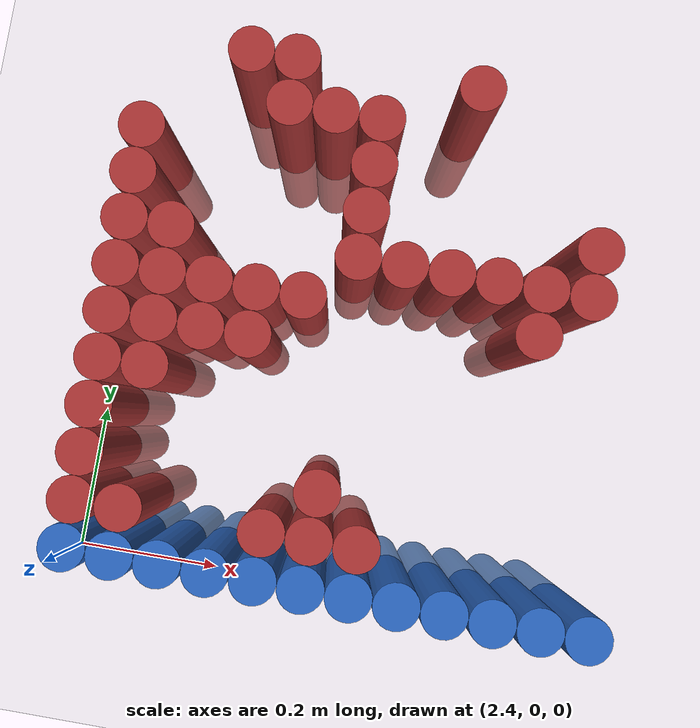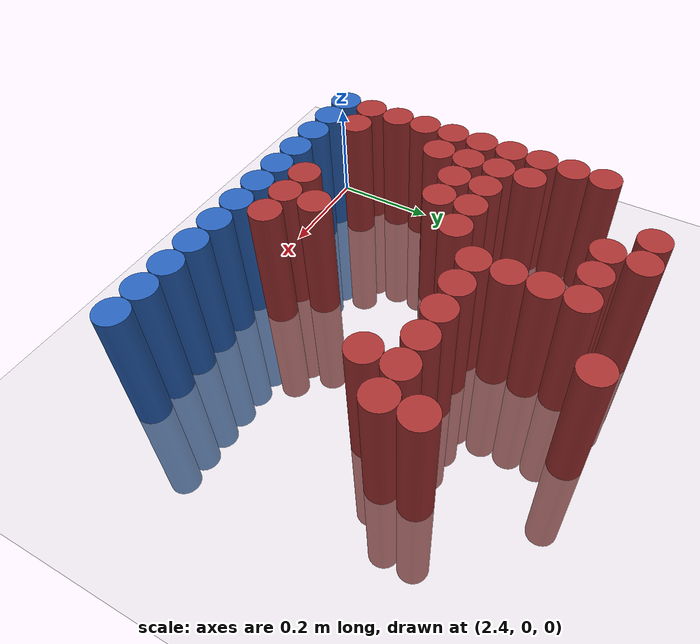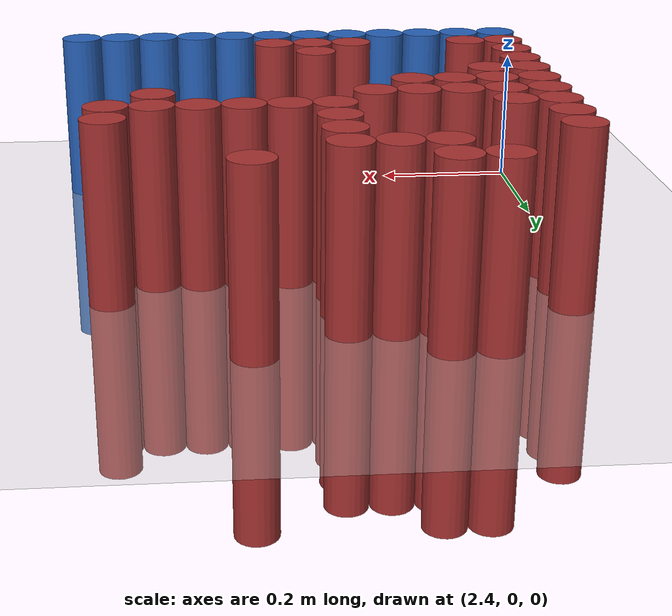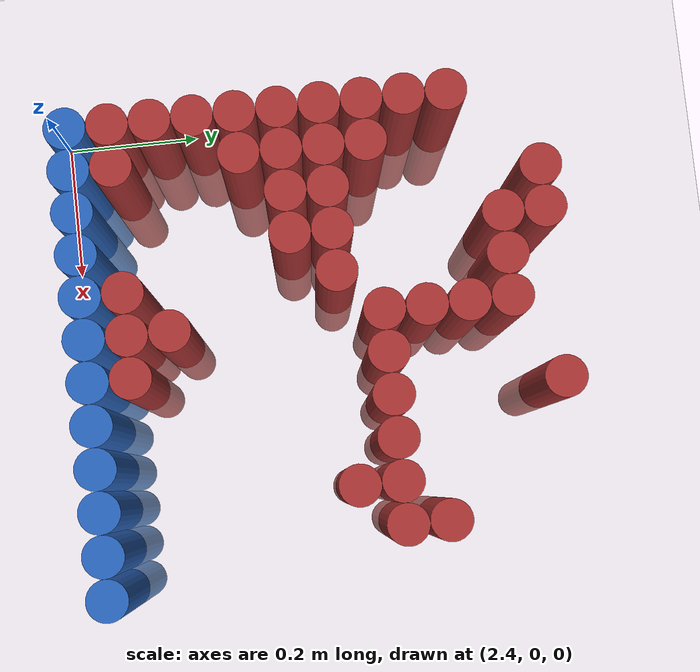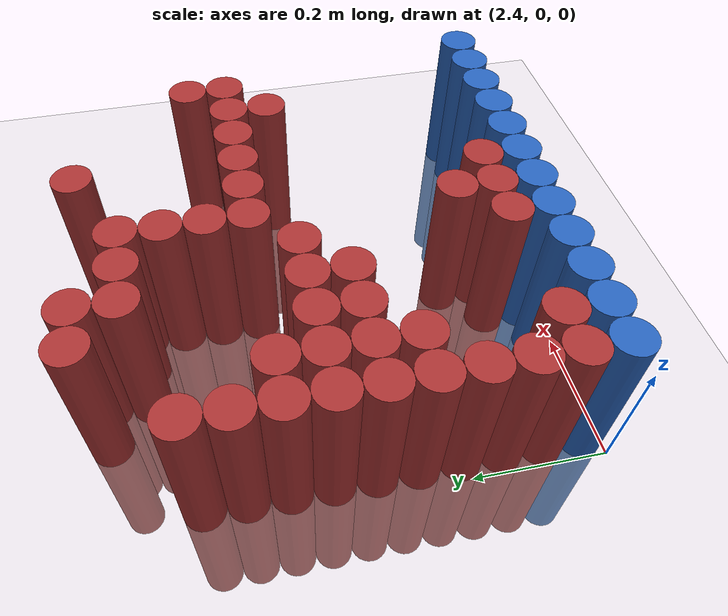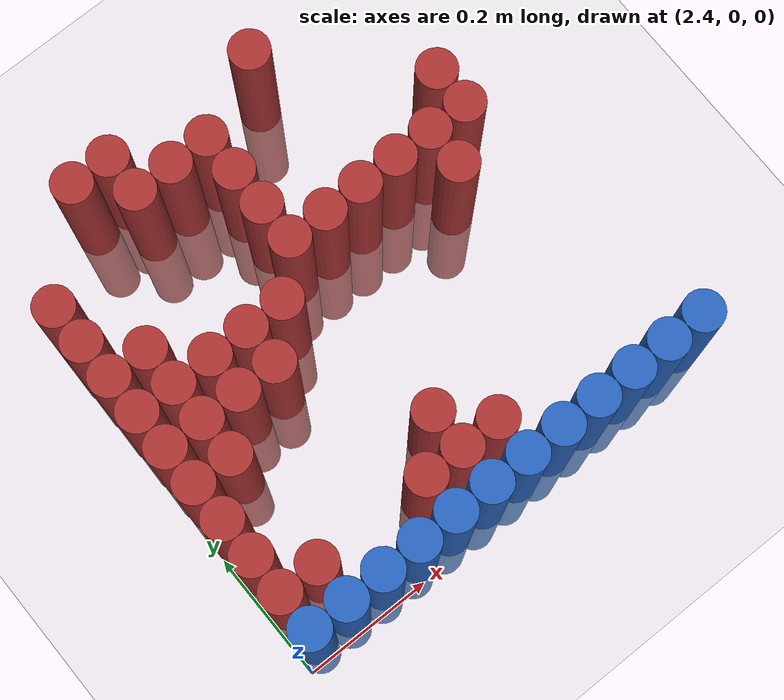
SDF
<sdf version="1.6">
 <world name="default">
  <model name="ground_plane">
   <static>1</static>
   <link name="link">
    <collision name="collision">
     <geometry><plane><normal>0 0 1</normal><size>100 100</size></plane></geometry>
     <surface><friction><ode><mu>100</mu><mu2>50</mu2></ode></friction></surface>
    </collision>
    <visual name="visual">
     <cast_shadows>0</cast_shadows>
     <geometry><plane><normal>0 0 1</normal><size>100 100</size></plane></geometry>
     <material>
      <script><uri>file://media/materials/scripts/gazebo.material</uri><name>Gazebo/Grey</name></script>
     </material>
    </visual>
   </link>
  </model>
  <model name="unit_cylinder_228">
   <static>1</static>
   <pose>2.550000 0.690000 0.000000 0.000000 0.000000 0.000000</pose>
   <link name="link">
    <inertial>
     <mass>1</mass>
     <inertia><ixx>0.145833</ixx><ixy>0</ixy><ixz>0</ixz><iyy>0.145833</iyy><iyz>0</iyz><izz>0.125</izz></inertia>
    </inertial>
    <collision name="collision">
     <geometry><cylinder><radius>0.030000</radius><length>0.5</length></cylinder></geometry>
    </collision>
    <visual name="visual">
     <geometry><cylinder><radius>0.030000</radius><length>0.5</length></cylinder></geometry>
     <material>
      <ambient>0.648000 0.192000 0.192000 1</ambient>
      <diffuse>0.648000 0.192000 0.192000 1</diffuse>
     </material>
     <material>
      <script><name>Gazebo/Grey</name><uri>file://media/materials/scripts/gazebo.material</uri></script>
     </material>
    </visual>
   </link>
  </model>
  <model name="unit_cylinder_229">
   <static>1</static>
   <pose>2.610000 0.690000 0.000000 0.000000 0.000000 0.000000</pose>
   <link name="link">
    <inertial>
     <mass>1</mass>
     <inertia><ixx>0.145833</ixx><ixy>0</ixy><ixz>0</ixz><iyy>0.145833</iyy><iyz>0</iyz><izz>0.125</izz></inertia>
    </inertial>
    <collision name="collision">
     <geometry><cylinder><radius>0.030000</radius><length>0.5</length></cylinder></geometry>
    </collision>
    <visual name="visual">
     <geometry><cylinder><radius>0.030000</radius><length>0.5</length></cylinder></geometry>
     <material>
      <ambient>0.648000 0.192000 0.192000 1</ambient>
      <diffuse>0.648000 0.192000 0.192000 1</diffuse>
     </material>
     <material>
      <script><name>Gazebo/Grey</name><uri>file://media/materials/scripts/gazebo.material</uri></script>
     </material>
    </visual>
   </link>
  </model>
  <model name="unit_cylinder_230">
   <static>1</static>
   <pose>2.850000 0.690000 0.000000 0.000000 0.000000 0.000000</pose>
   <link name="link">
    <inertial>
     <mass>1</mass>
     <inertia><ixx>0.145833</ixx><ixy>0</ixy><ixz>0</ixz><iyy>0.145833</iyy><iyz>0</iyz><izz>0.125</izz></inertia>
    </inertial>
    <collision name="collision">
     <geometry><cylinder><radius>0.030000</radius><length>0.5</length></cylinder></geometry>
    </collision>
    <visual name="visual">
     <geometry><cylinder><radius>0.030000</radius><length>0.5</length></cylinder></geometry>
     <material>
      <ambient>0.648000 0.192000 0.192000 1</ambient>
      <diffuse>0.648000 0.192000 0.192000 1</diffuse>
     </material>
     <material>
      <script><name>Gazebo/Grey</name><uri>file://media/materials/scripts/gazebo.material</uri></script>
     </material>
    </visual>
   </link>
  </model>
  <model name="unit_cylinder_239">
   <static>1</static>
   <pose>2.610000 0.630000 0.000000 0.000000 0.000000 0.000000</pose>
   <link name="link">
    <inertial>
     <mass>1</mass>
     <inertia><ixx>0.145833</ixx><ixy>0</ixy><ixz>0</ixz><iyy>0.145833</iyy><iyz>0</iyz><izz>0.125</izz></inertia>
    </inertial>
    <collision name="collision">
     <geometry><cylinder><radius>0.030000</radius><length>0.5</length></cylinder></geometry>
    </collision>
    <visual name="visual">
     <geometry><cylinder><radius>0.030000</radius><length>0.5</length></cylinder></geometry>
     <material>
      <ambient>0.648000 0.192000 0.192000 1</ambient>
      <diffuse>0.648000 0.192000 0.192000 1</diffuse>
     </material>
     <material>
      <script><name>Gazebo/Grey</name><uri>file://media/materials/scripts/gazebo.material</uri></script>
     </material>
    </visual>
   </link>
  </model>
  <model name="unit_cylinder_240">
   <static>1</static>
   <pose>2.670000 0.630000 0.000000 0.000000 0.000000 0.000000</pose>
   <link name="link">
    <inertial>
     <mass>1</mass>
     <inertia><ixx>0.145833</ixx><ixy>0</ixy><ixz>0</ixz><iyy>0.145833</iyy><iyz>0</iyz><izz>0.125</izz></inertia>
    </inertial>
    <collision name="collision">
     <geometry><cylinder><radius>0.030000</radius><length>0.5</length></cylinder></geometry>
    </collision>
    <visual name="visual">
     <geometry><cylinder><radius>0.030000</radius><length>0.5</length></cylinder></geometry>
     <material>
      <ambient>0.648000 0.192000 0.192000 1</ambient>
      <diffuse>0.648000 0.192000 0.192000 1</diffuse>
     </material>
     <material>
      <script><name>Gazebo/Grey</name><uri>file://media/materials/scripts/gazebo.material</uri></script>
     </material>
    </visual>
   </link>
  </model>
  <model name="unit_cylinder_241">
   <static>1</static>
   <pose>2.730000 0.630000 0.000000 0.000000 0.000000 0.000000</pose>
   <link name="link">
    <inertial>
     <mass>1</mass>
     <inertia><ixx>0.145833</ixx><ixy>0</ixy><ixz>0</ixz><iyy>0.145833</iyy><iyz>0</iyz><izz>0.125</izz></inertia>
    </inertial>
    <collision name="collision">
     <geometry><cylinder><radius>0.030000</radius><length>0.5</length></cylinder></geometry>
    </collision>
    <visual name="visual">
     <geometry><cylinder><radius>0.030000</radius><length>0.5</length></cylinder></geometry>
     <material>
      <ambient>0.648000 0.192000 0.192000 1</ambient>
      <diffuse>0.648000 0.192000 0.192000 1</diffuse>
     </material>
     <material>
      <script><name>Gazebo/Grey</name><uri>file://media/materials/scripts/gazebo.material</uri></script>
     </material>
    </visual>
   </link>
  </model>
  <model name="unit_cylinder_245">
   <static>1</static>
   <pose>2.430000 0.570000 0.000000 0.000000 0.000000 0.000000</pose>
   <link name="link">
    <inertial>
     <mass>1</mass>
     <inertia><ixx>0.145833</ixx><ixy>0</ixy><ixz>0</ixz><iyy>0.145833</iyy><iyz>0</iyz><izz>0.125</izz></inertia>
    </inertial>
    <collision name="collision">
     <geometry><cylinder><radius>0.030000</radius><length>0.5</length></cylinder></geometry>
    </collision>
    <visual name="visual">
     <geometry><cylinder><radius>0.030000</radius><length>0.5</length></cylinder></geometry>
     <material>
      <ambient>0.648000 0.192000 0.192000 1</ambient>
      <diffuse>0.648000 0.192000 0.192000 1</diffuse>
     </material>
     <material>
      <script><name>Gazebo/Grey</name><uri>file://media/materials/scripts/gazebo.material</uri></script>
     </material>
    </visual>
   </link>
  </model>
  <model name="unit_cylinder_246">
   <static>1</static>
   <pose>2.730000 0.570000 0.000000 0.000000 0.000000 0.000000</pose>
   <link name="link">
    <inertial>
     <mass>1</mass>
     <inertia><ixx>0.145833</ixx><ixy>0</ixy><ixz>0</ixz><iyy>0.145833</iyy><iyz>0</iyz><izz>0.125</izz></inertia>
    </inertial>
    <collision name="collision">
     <geometry><cylinder><radius>0.030000</radius><length>0.5</length></cylinder></geometry>
    </collision>
    <visual name="visual">
     <geometry><cylinder><radius>0.030000</radius><length>0.5</length></cylinder></geometry>
     <material>
      <ambient>0.648000 0.192000 0.192000 1</ambient>
      <diffuse>0.648000 0.192000 0.192000 1</diffuse>
     </material>
     <material>
      <script><name>Gazebo/Grey</name><uri>file://media/materials/scripts/gazebo.material</uri></script>
     </material>
    </visual>
   </link>
  </model>
  <model name="unit_cylinder_253">
   <static>1</static>
   <pose>2.430000 0.510000 0.000000 0.000000 0.000000 0.000000</pose>
   <link name="link">
    <inertial>
     <mass>1</mass>
     <inertia><ixx>0.145833</ixx><ixy>0</ixy><ixz>0</ixz><iyy>0.145833</iyy><iyz>0</iyz><izz>0.125</izz></inertia>
    </inertial>
    <collision name="collision">
     <geometry><cylinder><radius>0.030000</radius><length>0.5</length></cylinder></geometry>
    </collision>
    <visual name="visual">
     <geometry><cylinder><radius>0.030000</radius><length>0.5</length></cylinder></geometry>
     <material>
      <ambient>0.648000 0.192000 0.192000 1</ambient>
      <diffuse>0.648000 0.192000 0.192000 1</diffuse>
     </material>
     <material>
      <script><name>Gazebo/Grey</name><uri>file://media/materials/scripts/gazebo.material</uri></script>
     </material>
    </visual>
   </link>
  </model>
  <model name="unit_cylinder_254">
   <static>1</static>
   <pose>2.730000 0.510000 0.000000 0.000000 0.000000 0.000000</pose>
   <link name="link">
    <inertial>
     <mass>1</mass>
     <inertia><ixx>0.145833</ixx><ixy>0</ixy><ixz>0</ixz><iyy>0.145833</iyy><iyz>0</iyz><izz>0.125</izz></inertia>
    </inertial>
    <collision name="collision">
     <geometry><cylinder><radius>0.030000</radius><length>0.5</length></cylinder></geometry>
    </collision>
    <visual name="visual">
     <geometry><cylinder><radius>0.030000</radius><length>0.5</length></cylinder></geometry>
     <material>
      <ambient>0.648000 0.192000 0.192000 1</ambient>
      <diffuse>0.648000 0.192000 0.192000 1</diffuse>
     </material>
     <material>
      <script><name>Gazebo/Grey</name><uri>file://media/materials/scripts/gazebo.material</uri></script>
     </material>
    </visual>
   </link>
  </model>
  <model name="unit_cylinder_255">
   <static>1</static>
   <pose>3.030000 0.510000 0.000000 0.000000 0.000000 0.000000</pose>
   <link name="link">
    <inertial>
     <mass>1</mass>
     <inertia><ixx>0.145833</ixx><ixy>0</ixy><ixz>0</ixz><iyy>0.145833</iyy><iyz>0</iyz><izz>0.125</izz></inertia>
    </inertial>
    <collision name="collision">
     <geometry><cylinder><radius>0.030000</radius><length>0.5</length></cylinder></geometry>
    </collision>
    <visual name="visual">
     <geometry><cylinder><radius>0.030000</radius><length>0.5</length></cylinder></geometry>
     <material>
      <ambient>0.648000 0.192000 0.192000 1</ambient>
      <diffuse>0.648000 0.192000 0.192000 1</diffuse>
     </material>
     <material>
      <script><name>Gazebo/Grey</name><uri>file://media/materials/scripts/gazebo.material</uri></script>
     </material>
    </visual>
   </link>
  </model>
  <model name="unit_cylinder_260">
   <static>1</static>
   <pose>2.430000 0.450000 0.000000 0.000000 0.000000 0.000000</pose>
   <link name="link">
    <inertial>
     <mass>1</mass>
     <inertia><ixx>0.145833</ixx><ixy>0</ixy><ixz>0</ixz><iyy>0.145833</iyy><iyz>0</iyz><izz>0.125</izz></inertia>
    </inertial>
    <collision name="collision">
     <geometry><cylinder><radius>0.030000</radius><length>0.5</length></cylinder></geometry>
    </collision>
    <visual name="visual">
     <geometry><cylinder><radius>0.030000</radius><length>0.5</length></cylinder></geometry>
     <material>
      <ambient>0.648000 0.192000 0.192000 1</ambient>
      <diffuse>0.648000 0.192000 0.192000 1</diffuse>
     </material>
     <material>
      <script><name>Gazebo/Grey</name><uri>file://media/materials/scripts/gazebo.material</uri></script>
     </material>
    </visual>
   </link>
  </model>
  <model name="unit_cylinder_261">
   <static>1</static>
   <pose>2.490000 0.450000 0.000000 0.000000 0.000000 0.000000</pose>
   <link name="link">
    <inertial>
     <mass>1</mass>
     <inertia><ixx>0.145833</ixx><ixy>0</ixy><ixz>0</ixz><iyy>0.145833</iyy><iyz>0</iyz><izz>0.125</izz></inertia>
    </inertial>
    <collision name="collision">
     <geometry><cylinder><radius>0.030000</radius><length>0.5</length></cylinder></geometry>
    </collision>
    <visual name="visual">
     <geometry><cylinder><radius>0.030000</radius><length>0.5</length></cylinder></geometry>
     <material>
      <ambient>0.648000 0.192000 0.192000 1</ambient>
      <diffuse>0.648000 0.192000 0.192000 1</diffuse>
     </material>
     <material>
      <script><name>Gazebo/Grey</name><uri>file://media/materials/scripts/gazebo.material</uri></script>
     </material>
    </visual>
   </link>
  </model>
  <model name="unit_cylinder_262">
   <static>1</static>
   <pose>2.730000 0.450000 0.000000 0.000000 0.000000 0.000000</pose>
   <link name="link">
    <inertial>
     <mass>1</mass>
     <inertia><ixx>0.145833</ixx><ixy>0</ixy><ixz>0</ixz><iyy>0.145833</iyy><iyz>0</iyz><izz>0.125</izz></inertia>
    </inertial>
    <collision name="collision">
     <geometry><cylinder><radius>0.030000</radius><length>0.5</length></cylinder></geometry>
    </collision>
    <visual name="visual">
     <geometry><cylinder><radius>0.030000</radius><length>0.5</length></cylinder></geometry>
     <material>
      <ambient>0.648000 0.192000 0.192000 1</ambient>
      <diffuse>0.648000 0.192000 0.192000 1</diffuse>
     </material>
     <material>
      <script><name>Gazebo/Grey</name><uri>file://media/materials/scripts/gazebo.material</uri></script>
     </material>
    </visual>
   </link>
  </model>
  <model name="unit_cylinder_263">
   <static>1</static>
   <pose>2.790000 0.450000 0.000000 0.000000 0.000000 0.000000</pose>
   <link name="link">
    <inertial>
     <mass>1</mass>
     <inertia><ixx>0.145833</ixx><ixy>0</ixy><ixz>0</ixz><iyy>0.145833</iyy><iyz>0</iyz><izz>0.125</izz></inertia>
    </inertial>
    <collision name="collision">
     <geometry><cylinder><radius>0.030000</radius><length>0.5</length></cylinder></geometry>
    </collision>
    <visual name="visual">
     <geometry><cylinder><radius>0.030000</radius><length>0.5</length></cylinder></geometry>
     <material>
      <ambient>0.648000 0.192000 0.192000 1</ambient>
      <diffuse>0.648000 0.192000 0.192000 1</diffuse>
     </material>
     <material>
      <script><name>Gazebo/Grey</name><uri>file://media/materials/scripts/gazebo.material</uri></script>
     </material>
    </visual>
   </link>
  </model>
  <model name="unit_cylinder_264">
   <static>1</static>
   <pose>2.850000 0.450000 0.000000 0.000000 0.000000 0.000000</pose>
   <link name="link">
    <inertial>
     <mass>1</mass>
     <inertia><ixx>0.145833</ixx><ixy>0</ixy><ixz>0</ixz><iyy>0.145833</iyy><iyz>0</iyz><izz>0.125</izz></inertia>
    </inertial>
    <collision name="collision">
     <geometry><cylinder><radius>0.030000</radius><length>0.5</length></cylinder></geometry>
    </collision>
    <visual name="visual">
     <geometry><cylinder><radius>0.030000</radius><length>0.5</length></cylinder></geometry>
     <material>
      <ambient>0.648000 0.192000 0.192000 1</ambient>
      <diffuse>0.648000 0.192000 0.192000 1</diffuse>
     </material>
     <material>
      <script><name>Gazebo/Grey</name><uri>file://media/materials/scripts/gazebo.material</uri></script>
     </material>
    </visual>
   </link>
  </model>
  <model name="unit_cylinder_265">
   <static>1</static>
   <pose>2.910000 0.450000 0.000000 0.000000 0.000000 0.000000</pose>
   <link name="link">
    <inertial>
     <mass>1</mass>
     <inertia><ixx>0.145833</ixx><ixy>0</ixy><ixz>0</ixz><iyy>0.145833</iyy><iyz>0</iyz><izz>0.125</izz></inertia>
    </inertial>
    <collision name="collision">
     <geometry><cylinder><radius>0.030000</radius><length>0.5</length></cylinder></geometry>
    </collision>
    <visual name="visual">
     <geometry><cylinder><radius>0.030000</radius><length>0.5</length></cylinder></geometry>
     <material>
      <ambient>0.648000 0.192000 0.192000 1</ambient>
      <diffuse>0.648000 0.192000 0.192000 1</diffuse>
     </material>
     <material>
      <script><name>Gazebo/Grey</name><uri>file://media/materials/scripts/gazebo.material</uri></script>
     </material>
    </visual>
   </link>
  </model>
  <model name="unit_cylinder_266">
   <static>1</static>
   <pose>2.970000 0.450000 0.000000 0.000000 0.000000 0.000000</pose>
   <link name="link">
    <inertial>
     <mass>1</mass>
     <inertia><ixx>0.145833</ixx><ixy>0</ixy><ixz>0</ixz><iyy>0.145833</iyy><iyz>0</iyz><izz>0.125</izz></inertia>
    </inertial>
    <collision name="collision">
     <geometry><cylinder><radius>0.030000</radius><length>0.5</length></cylinder></geometry>
    </collision>
    <visual name="visual">
     <geometry><cylinder><radius>0.030000</radius><length>0.5</length></cylinder></geometry>
     <material>
      <ambient>0.648000 0.192000 0.192000 1</ambient>
      <diffuse>0.648000 0.192000 0.192000 1</diffuse>
     </material>
     <material>
      <script><name>Gazebo/Grey</name><uri>file://media/materials/scripts/gazebo.material</uri></script>
     </material>
    </visual>
   </link>
  </model>
  <model name="unit_cylinder_267">
   <static>1</static>
   <pose>3.030000 0.450000 0.000000 0.000000 0.000000 0.000000</pose>
   <link name="link">
    <inertial>
     <mass>1</mass>
     <inertia><ixx>0.145833</ixx><ixy>0</ixy><ixz>0</ixz><iyy>0.145833</iyy><iyz>0</iyz><izz>0.125</izz></inertia>
    </inertial>
    <collision name="collision">
     <geometry><cylinder><radius>0.030000</radius><length>0.5</length></cylinder></geometry>
    </collision>
    <visual name="visual">
     <geometry><cylinder><radius>0.030000</radius><length>0.5</length></cylinder></geometry>
     <material>
      <ambient>0.648000 0.192000 0.192000 1</ambient>
      <diffuse>0.648000 0.192000 0.192000 1</diffuse>
     </material>
     <material>
      <script><name>Gazebo/Grey</name><uri>file://media/materials/scripts/gazebo.material</uri></script>
     </material>
    </visual>
   </link>
  </model>
  <model name="unit_cylinder_275">
   <static>1</static>
   <pose>2.430000 0.390000 0.000000 0.000000 0.000000 0.000000</pose>
   <link name="link">
    <inertial>
     <mass>1</mass>
     <inertia><ixx>0.145833</ixx><ixy>0</ixy><ixz>0</ixz><iyy>0.145833</iyy><iyz>0</iyz><izz>0.125</izz></inertia>
    </inertial>
    <collision name="collision">
     <geometry><cylinder><radius>0.030000</radius><length>0.5</length></cylinder></geometry>
    </collision>
    <visual name="visual">
     <geometry><cylinder><radius>0.030000</radius><length>0.5</length></cylinder></geometry>
     <material>
      <ambient>0.648000 0.192000 0.192000 1</ambient>
      <diffuse>0.648000 0.192000 0.192000 1</diffuse>
     </material>
     <material>
      <script><name>Gazebo/Grey</name><uri>file://media/materials/scripts/gazebo.material</uri></script>
     </material>
    </visual>
   </link>
  </model>
  <model name="unit_cylinder_276">
   <static>1</static>
   <pose>2.490000 0.390000 0.000000 0.000000 0.000000 0.000000</pose>
   <link name="link">
    <inertial>
     <mass>1</mass>
     <inertia><ixx>0.145833</ixx><ixy>0</ixy><ixz>0</ixz><iyy>0.145833</iyy><iyz>0</iyz><izz>0.125</izz></inertia>
    </inertial>
    <collision name="collision">
     <geometry><cylinder><radius>0.030000</radius><length>0.5</length></cylinder></geometry>
    </collision>
    <visual name="visual">
     <geometry><cylinder><radius>0.030000</radius><length>0.5</length></cylinder></geometry>
     <material>
      <ambient>0.648000 0.192000 0.192000 1</ambient>
      <diffuse>0.648000 0.192000 0.192000 1</diffuse>
     </material>
     <material>
      <script><name>Gazebo/Grey</name><uri>file://media/materials/scripts/gazebo.material</uri></script>
     </material>
    </visual>
   </link>
  </model>
  <model name="unit_cylinder_277">
   <static>1</static>
   <pose>2.550000 0.390000 0.000000 0.000000 0.000000 0.000000</pose>
   <link name="link">
    <inertial>
     <mass>1</mass>
     <inertia><ixx>0.145833</ixx><ixy>0</ixy><ixz>0</ixz><iyy>0.145833</iyy><iyz>0</iyz><izz>0.125</izz></inertia>
    </inertial>
    <collision name="collision">
     <geometry><cylinder><radius>0.030000</radius><length>0.5</length></cylinder></geometry>
    </collision>
    <visual name="visual">
     <geometry><cylinder><radius>0.030000</radius><length>0.5</length></cylinder></geometry>
     <material>
      <ambient>0.648000 0.192000 0.192000 1</ambient>
      <diffuse>0.648000 0.192000 0.192000 1</diffuse>
     </material>
     <material>
      <script><name>Gazebo/Grey</name><uri>file://media/materials/scripts/gazebo.material</uri></script>
     </material>
    </visual>
   </link>
  </model>
  <model name="unit_cylinder_278">
   <static>1</static>
   <pose>2.610000 0.390000 0.000000 0.000000 0.000000 0.000000</pose>
   <link name="link">
    <inertial>
     <mass>1</mass>
     <inertia><ixx>0.145833</ixx><ixy>0</ixy><ixz>0</ixz><iyy>0.145833</iyy><iyz>0</iyz><izz>0.125</izz></inertia>
    </inertial>
    <collision name="collision">
     <geometry><cylinder><radius>0.030000</radius><length>0.5</length></cylinder></geometry>
    </collision>
    <visual name="visual">
     <geometry><cylinder><radius>0.030000</radius><length>0.5</length></cylinder></geometry>
     <material>
      <ambient>0.648000 0.192000 0.192000 1</ambient>
      <diffuse>0.648000 0.192000 0.192000 1</diffuse>
     </material>
     <material>
      <script><name>Gazebo/Grey</name><uri>file://media/materials/scripts/gazebo.material</uri></script>
     </material>
    </visual>
   </link>
  </model>
  <model name="unit_cylinder_279">
   <static>1</static>
   <pose>2.670000 0.390000 0.000000 0.000000 0.000000 0.000000</pose>
   <link name="link">
    <inertial>
     <mass>1</mass>
     <inertia><ixx>0.145833</ixx><ixy>0</ixy><ixz>0</ixz><iyy>0.145833</iyy><iyz>0</iyz><izz>0.125</izz></inertia>
    </inertial>
    <collision name="collision">
     <geometry><cylinder><radius>0.030000</radius><length>0.5</length></cylinder></geometry>
    </collision>
    <visual name="visual">
     <geometry><cylinder><radius>0.030000</radius><length>0.5</length></cylinder></geometry>
     <material>
      <ambient>0.648000 0.192000 0.192000 1</ambient>
      <diffuse>0.648000 0.192000 0.192000 1</diffuse>
     </material>
     <material>
      <script><name>Gazebo/Grey</name><uri>file://media/materials/scripts/gazebo.material</uri></script>
     </material>
    </visual>
   </link>
  </model>
  <model name="unit_cylinder_280">
   <static>1</static>
   <pose>2.970000 0.390000 0.000000 0.000000 0.000000 0.000000</pose>
   <link name="link">
    <inertial>
     <mass>1</mass>
     <inertia><ixx>0.145833</ixx><ixy>0</ixy><ixz>0</ixz><iyy>0.145833</iyy><iyz>0</iyz><izz>0.125</izz></inertia>
    </inertial>
    <collision name="collision">
     <geometry><cylinder><radius>0.030000</radius><length>0.5</length></cylinder></geometry>
    </collision>
    <visual name="visual">
     <geometry><cylinder><radius>0.030000</radius><length>0.5</length></cylinder></geometry>
     <material>
      <ambient>0.648000 0.192000 0.192000 1</ambient>
      <diffuse>0.648000 0.192000 0.192000 1</diffuse>
     </material>
     <material>
      <script><name>Gazebo/Grey</name><uri>file://media/materials/scripts/gazebo.material</uri></script>
     </material>
    </visual>
   </link>
  </model>
  <model name="unit_cylinder_284">
   <static>1</static>
   <pose>2.430000 0.330000 0.000000 0.000000 0.000000 0.000000</pose>
   <link name="link">
    <inertial>
     <mass>1</mass>
     <inertia><ixx>0.145833</ixx><ixy>0</ixy><ixz>0</ixz><iyy>0.145833</iyy><iyz>0</iyz><izz>0.125</izz></inertia>
    </inertial>
    <collision name="collision">
     <geometry><cylinder><radius>0.030000</radius><length>0.5</length></cylinder></geometry>
    </collision>
    <visual name="visual">
     <geometry><cylinder><radius>0.030000</radius><length>0.5</length></cylinder></geometry>
     <material>
      <ambient>0.648000 0.192000 0.192000 1</ambient>
      <diffuse>0.648000 0.192000 0.192000 1</diffuse>
     </material>
     <material>
      <script><name>Gazebo/Grey</name><uri>file://media/materials/scripts/gazebo.material</uri></script>
     </material>
    </visual>
   </link>
  </model>
  <model name="unit_cylinder_285">
   <static>1</static>
   <pose>2.490000 0.330000 0.000000 0.000000 0.000000 0.000000</pose>
   <link name="link">
    <inertial>
     <mass>1</mass>
     <inertia><ixx>0.145833</ixx><ixy>0</ixy><ixz>0</ixz><iyy>0.145833</iyy><iyz>0</iyz><izz>0.125</izz></inertia>
    </inertial>
    <collision name="collision">
     <geometry><cylinder><radius>0.030000</radius><length>0.5</length></cylinder></geometry>
    </collision>
    <visual name="visual">
     <geometry><cylinder><radius>0.030000</radius><length>0.5</length></cylinder></geometry>
     <material>
      <ambient>0.648000 0.192000 0.192000 1</ambient>
      <diffuse>0.648000 0.192000 0.192000 1</diffuse>
     </material>
     <material>
      <script><name>Gazebo/Grey</name><uri>file://media/materials/scripts/gazebo.material</uri></script>
     </material>
    </visual>
   </link>
  </model>
  <model name="unit_cylinder_286">
   <static>1</static>
   <pose>2.550000 0.330000 0.000000 0.000000 0.000000 0.000000</pose>
   <link name="link">
    <inertial>
     <mass>1</mass>
     <inertia><ixx>0.145833</ixx><ixy>0</ixy><ixz>0</ixz><iyy>0.145833</iyy><iyz>0</iyz><izz>0.125</izz></inertia>
    </inertial>
    <collision name="collision">
     <geometry><cylinder><radius>0.030000</radius><length>0.5</length></cylinder></geometry>
    </collision>
    <visual name="visual">
     <geometry><cylinder><radius>0.030000</radius><length>0.5</length></cylinder></geometry>
     <material>
      <ambient>0.648000 0.192000 0.192000 1</ambient>
      <diffuse>0.648000 0.192000 0.192000 1</diffuse>
     </material>
     <material>
      <script><name>Gazebo/Grey</name><uri>file://media/materials/scripts/gazebo.material</uri></script>
     </material>
    </visual>
   </link>
  </model>
  <model name="unit_cylinder_287">
   <static>1</static>
   <pose>2.610000 0.330000 0.000000 0.000000 0.000000 0.000000</pose>
   <link name="link">
    <inertial>
     <mass>1</mass>
     <inertia><ixx>0.145833</ixx><ixy>0</ixy><ixz>0</ixz><iyy>0.145833</iyy><iyz>0</iyz><izz>0.125</izz></inertia>
    </inertial>
    <collision name="collision">
     <geometry><cylinder><radius>0.030000</radius><length>0.5</length></cylinder></geometry>
    </collision>
    <visual name="visual">
     <geometry><cylinder><radius>0.030000</radius><length>0.5</length></cylinder></geometry>
     <material>
      <ambient>0.648000 0.192000 0.192000 1</ambient>
      <diffuse>0.648000 0.192000 0.192000 1</diffuse>
     </material>
     <material>
      <script><name>Gazebo/Grey</name><uri>file://media/materials/scripts/gazebo.material</uri></script>
     </material>
    </visual>
   </link>
  </model>
  <model name="unit_cylinder_293">
   <static>1</static>
   <pose>2.430000 0.270000 0.000000 0.000000 0.000000 0.000000</pose>
   <link name="link">
    <inertial>
     <mass>1</mass>
     <inertia><ixx>0.145833</ixx><ixy>0</ixy><ixz>0</ixz><iyy>0.145833</iyy><iyz>0</iyz><izz>0.125</izz></inertia>
    </inertial>
    <collision name="collision">
     <geometry><cylinder><radius>0.030000</radius><length>0.5</length></cylinder></geometry>
    </collision>
    <visual name="visual">
     <geometry><cylinder><radius>0.030000</radius><length>0.5</length></cylinder></geometry>
     <material>
      <ambient>0.648000 0.192000 0.192000 1</ambient>
      <diffuse>0.648000 0.192000 0.192000 1</diffuse>
     </material>
     <material>
      <script><name>Gazebo/Grey</name><uri>file://media/materials/scripts/gazebo.material</uri></script>
     </material>
    </visual>
   </link>
  </model>
  <model name="unit_cylinder_294">
   <static>1</static>
   <pose>2.490000 0.270000 0.000000 0.000000 0.000000 0.000000</pose>
   <link name="link">
    <inertial>
     <mass>1</mass>
     <inertia><ixx>0.145833</ixx><ixy>0</ixy><ixz>0</ixz><iyy>0.145833</iyy><iyz>0</iyz><izz>0.125</izz></inertia>
    </inertial>
    <collision name="collision">
     <geometry><cylinder><radius>0.030000</radius><length>0.5</length></cylinder></geometry>
    </collision>
    <visual name="visual">
     <geometry><cylinder><radius>0.030000</radius><length>0.5</length></cylinder></geometry>
     <material>
      <ambient>0.648000 0.192000 0.192000 1</ambient>
      <diffuse>0.648000 0.192000 0.192000 1</diffuse>
     </material>
     <material>
      <script><name>Gazebo/Grey</name><uri>file://media/materials/scripts/gazebo.material</uri></script>
     </material>
    </visual>
   </link>
  </model>
  <model name="unit_cylinder_299">
   <static>1</static>
   <pose>2.430000 0.210000 0.000000 0.000000 0.000000 0.000000</pose>
   <link name="link">
    <inertial>
     <mass>1</mass>
     <inertia><ixx>0.145833</ixx><ixy>0</ixy><ixz>0</ixz><iyy>0.145833</iyy><iyz>0</iyz><izz>0.125</izz></inertia>
    </inertial>
    <collision name="collision">
     <geometry><cylinder><radius>0.030000</radius><length>0.5</length></cylinder></geometry>
    </collision>
    <visual name="visual">
     <geometry><cylinder><radius>0.030000</radius><length>0.5</length></cylinder></geometry>
     <material>
      <ambient>0.648000 0.192000 0.192000 1</ambient>
      <diffuse>0.648000 0.192000 0.192000 1</diffuse>
     </material>
     <material>
      <script><name>Gazebo/Grey</name><uri>file://media/materials/scripts/gazebo.material</uri></script>
     </material>
    </visual>
   </link>
  </model>
  <model name="unit_cylinder_304">
   <static>1</static>
   <pose>2.430000 0.150000 0.000000 0.000000 0.000000 0.000000</pose>
   <link name="link">
    <inertial>
     <mass>1</mass>
     <inertia><ixx>0.145833</ixx><ixy>0</ixy><ixz>0</ixz><iyy>0.145833</iyy><iyz>0</iyz><izz>0.125</izz></inertia>
    </inertial>
    <collision name="collision">
     <geometry><cylinder><radius>0.030000</radius><length>0.5</length></cylinder></geometry>
    </collision>
    <visual name="visual">
     <geometry><cylinder><radius>0.030000</radius><length>0.5</length></cylinder></geometry>
     <material>
      <ambient>0.648000 0.192000 0.192000 1</ambient>
      <diffuse>0.648000 0.192000 0.192000 1</diffuse>
     </material>
     <material>
      <script><name>Gazebo/Grey</name><uri>file://media/materials/scripts/gazebo.material</uri></script>
     </material>
    </visual>
   </link>
  </model>
  <model name="unit_cylinder_305">
   <static>1</static>
   <pose>2.730000 0.150000 0.000000 0.000000 0.000000 0.000000</pose>
   <link name="link">
    <inertial>
     <mass>1</mass>
     <inertia><ixx>0.145833</ixx><ixy>0</ixy><ixz>0</ixz><iyy>0.145833</iyy><iyz>0</iyz><izz>0.125</izz></inertia>
    </inertial>
    <collision name="collision">
     <geometry><cylinder><radius>0.030000</radius><length>0.5</length></cylinder></geometry>
    </collision>
    <visual name="visual">
     <geometry><cylinder><radius>0.030000</radius><length>0.5</length></cylinder></geometry>
     <material>
      <ambient>0.648000 0.192000 0.192000 1</ambient>
      <diffuse>0.648000 0.192000 0.192000 1</diffuse>
     </material>
     <material>
      <script><name>Gazebo/Grey</name><uri>file://media/materials/scripts/gazebo.material</uri></script>
     </material>
    </visual>
   </link>
  </model>
  <model name="unit_cylinder_314">
   <static>1</static>
   <pose>2.430000 0.090000 0.000000 0.000000 0.000000 0.000000</pose>
   <link name="link">
    <inertial>
     <mass>1</mass>
     <inertia><ixx>0.145833</ixx><ixy>0</ixy><ixz>0</ixz><iyy>0.145833</iyy><iyz>0</iyz><izz>0.125</izz></inertia>
    </inertial>
    <collision name="collision">
     <geometry><cylinder><radius>0.030000</radius><length>0.5</length></cylinder></geometry>
    </collision>
    <visual name="visual">
     <geometry><cylinder><radius>0.030000</radius><length>0.5</length></cylinder></geometry>
     <material>
      <ambient>0.648000 0.192000 0.192000 1</ambient>
      <diffuse>0.648000 0.192000 0.192000 1</diffuse>
     </material>
     <material>
      <script><name>Gazebo/Grey</name><uri>file://media/materials/scripts/gazebo.material</uri></script>
     </material>
    </visual>
   </link>
  </model>
  <model name="unit_cylinder_315">
   <static>1</static>
   <pose>2.490000 0.090000 0.000000 0.000000 0.000000 0.000000</pose>
   <link name="link">
    <inertial>
     <mass>1</mass>
     <inertia><ixx>0.145833</ixx><ixy>0</ixy><ixz>0</ixz><iyy>0.145833</iyy><iyz>0</iyz><izz>0.125</izz></inertia>
    </inertial>
    <collision name="collision">
     <geometry><cylinder><radius>0.030000</radius><length>0.5</length></cylinder></geometry>
    </collision>
    <visual name="visual">
     <geometry><cylinder><radius>0.030000</radius><length>0.5</length></cylinder></geometry>
     <material>
      <ambient>0.648000 0.192000 0.192000 1</ambient>
      <diffuse>0.648000 0.192000 0.192000 1</diffuse>
     </material>
     <material>
      <script><name>Gazebo/Grey</name><uri>file://media/materials/scripts/gazebo.material</uri></script>
     </material>
    </visual>
   </link>
  </model>
  <model name="unit_cylinder_316">
   <static>1</static>
   <pose>2.670000 0.090000 0.000000 0.000000 0.000000 0.000000</pose>
   <link name="link">
    <inertial>
     <mass>1</mass>
     <inertia><ixx>0.145833</ixx><ixy>0</ixy><ixz>0</ixz><iyy>0.145833</iyy><iyz>0</iyz><izz>0.125</izz></inertia>
    </inertial>
    <collision name="collision">
     <geometry><cylinder><radius>0.030000</radius><length>0.5</length></cylinder></geometry>
    </collision>
    <visual name="visual">
     <geometry><cylinder><radius>0.030000</radius><length>0.5</length></cylinder></geometry>
     <material>
      <ambient>0.648000 0.192000 0.192000 1</ambient>
      <diffuse>0.648000 0.192000 0.192000 1</diffuse>
     </material>
     <material>
      <script><name>Gazebo/Grey</name><uri>file://media/materials/scripts/gazebo.material</uri></script>
     </material>
    </visual>
   </link>
  </model>
  <model name="unit_cylinder_317">
   <static>1</static>
   <pose>2.730000 0.090000 0.000000 0.000000 0.000000 0.000000</pose>
   <link name="link">
    <inertial>
     <mass>1</mass>
     <inertia><ixx>0.145833</ixx><ixy>0</ixy><ixz>0</ixz><iyy>0.145833</iyy><iyz>0</iyz><izz>0.125</izz></inertia>
    </inertial>
    <collision name="collision">
     <geometry><cylinder><radius>0.030000</radius><length>0.5</length></cylinder></geometry>
    </collision>
    <visual name="visual">
     <geometry><cylinder><radius>0.030000</radius><length>0.5</length></cylinder></geometry>
     <material>
      <ambient>0.648000 0.192000 0.192000 1</ambient>
      <diffuse>0.648000 0.192000 0.192000 1</diffuse>
     </material>
     <material>
      <script><name>Gazebo/Grey</name><uri>file://media/materials/scripts/gazebo.material</uri></script>
     </material>
    </visual>
   </link>
  </model>
  <model name="unit_cylinder_318">
   <static>1</static>
   <pose>2.790000 0.090000 0.000000 0.000000 0.000000 0.000000</pose>
   <link name="link">
    <inertial>
     <mass>1</mass>
     <inertia><ixx>0.145833</ixx><ixy>0</ixy><ixz>0</ixz><iyy>0.145833</iyy><iyz>0</iyz><izz>0.125</izz></inertia>
    </inertial>
    <collision name="collision">
     <geometry><cylinder><radius>0.030000</radius><length>0.5</length></cylinder></geometry>
    </collision>
    <visual name="visual">
     <geometry><cylinder><radius>0.030000</radius><length>0.5</length></cylinder></geometry>
     <material>
      <ambient>0.648000 0.192000 0.192000 1</ambient>
      <diffuse>0.648000 0.192000 0.192000 1</diffuse>
     </material>
     <material>
      <script><name>Gazebo/Grey</name><uri>file://media/materials/scripts/gazebo.material</uri></script>
     </material>
    </visual>
   </link>
  </model>
  <model name="unit_cylinder_336">
   <static>1</static>
   <pose>2.430000 0.030000 0.000000 0.000000 0.000000 0.000000</pose>
   <link name="link">
    <inertial>
     <mass>1</mass>
     <inertia><ixx>0.145833</ixx><ixy>0</ixy><ixz>0</ixz><iyy>0.145833</iyy><iyz>0</iyz><izz>0.125</izz></inertia>
    </inertial>
    <collision name="collision">
     <geometry><cylinder><radius>0.030000</radius><length>0.5</length></cylinder></geometry>
    </collision>
    <visual name="visual">
     <geometry><cylinder><radius>0.030000</radius><length>0.5</length></cylinder></geometry>
     <material>
      <ambient>0.152000 0.379000 0.720000 1</ambient>
      <diffuse>0.152000 0.379000 0.720000 1</diffuse>
     </material>
     <material>
      <script><name>Gazebo/Grey</name><uri>file://media/materials/scripts/gazebo.material</uri></script>
     </material>
    </visual>
   </link>
  </model>
  <model name="unit_cylinder_337">
   <static>1</static>
   <pose>2.490000 0.030000 0.000000 0.000000 0.000000 0.000000</pose>
   <link name="link">
    <inertial>
     <mass>1</mass>
     <inertia><ixx>0.145833</ixx><ixy>0</ixy><ixz>0</ixz><iyy>0.145833</iyy><iyz>0</iyz><izz>0.125</izz></inertia>
    </inertial>
    <collision name="collision">
     <geometry><cylinder><radius>0.030000</radius><length>0.5</length></cylinder></geometry>
    </collision>
    <visual name="visual">
     <geometry><cylinder><radius>0.030000</radius><length>0.5</length></cylinder></geometry>
     <material>
      <ambient>0.152000 0.379000 0.720000 1</ambient>
      <diffuse>0.152000 0.379000 0.720000 1</diffuse>
     </material>
     <material>
      <script><name>Gazebo/Grey</name><uri>file://media/materials/scripts/gazebo.material</uri></script>
     </material>
    </visual>
   </link>
  </model>
  <model name="unit_cylinder_338">
   <static>1</static>
   <pose>2.550000 0.030000 0.000000 0.000000 0.000000 0.000000</pose>
   <link name="link">
    <inertial>
     <mass>1</mass>
     <inertia><ixx>0.145833</ixx><ixy>0</ixy><ixz>0</ixz><iyy>0.145833</iyy><iyz>0</iyz><izz>0.125</izz></inertia>
    </inertial>
    <collision name="collision">
     <geometry><cylinder><radius>0.030000</radius><length>0.5</length></cylinder></geometry>
    </collision>
    <visual name="visual">
     <geometry><cylinder><radius>0.030000</radius><length>0.5</length></cylinder></geometry>
     <material>
      <ambient>0.152000 0.379000 0.720000 1</ambient>
      <diffuse>0.152000 0.379000 0.720000 1</diffuse>
     </material>
     <material>
      <script><name>Gazebo/Grey</name><uri>file://media/materials/scripts/gazebo.material</uri></script>
     </material>
    </visual>
   </link>
  </model>
  <model name="unit_cylinder_339">
   <static>1</static>
   <pose>2.610000 0.030000 0.000000 0.000000 0.000000 0.000000</pose>
   <link name="link">
    <inertial>
     <mass>1</mass>
     <inertia><ixx>0.145833</ixx><ixy>0</ixy><ixz>0</ixz><iyy>0.145833</iyy><iyz>0</iyz><izz>0.125</izz></inertia>
    </inertial>
    <collision name="collision">
     <geometry><cylinder><radius>0.030000</radius><length>0.5</length></cylinder></geometry>
    </collision>
    <visual name="visual">
     <geometry><cylinder><radius>0.030000</radius><length>0.5</length></cylinder></geometry>
     <material>
      <ambient>0.152000 0.379000 0.720000 1</ambient>
      <diffuse>0.152000 0.379000 0.720000 1</diffuse>
     </material>
     <material>
      <script><name>Gazebo/Grey</name><uri>file://media/materials/scripts/gazebo.material</uri></script>
     </material>
    </visual>
   </link>
  </model>
  <model name="unit_cylinder_340">
   <static>1</static>
   <pose>2.670000 0.030000 0.000000 0.000000 0.000000 0.000000</pose>
   <link name="link">
    <inertial>
     <mass>1</mass>
     <inertia><ixx>0.145833</ixx><ixy>0</ixy><ixz>0</ixz><iyy>0.145833</iyy><iyz>0</iyz><izz>0.125</izz></inertia>
    </inertial>
    <collision name="collision">
     <geometry><cylinder><radius>0.030000</radius><length>0.5</length></cylinder></geometry>
    </collision>
    <visual name="visual">
     <geometry><cylinder><radius>0.030000</radius><length>0.5</length></cylinder></geometry>
     <material>
      <ambient>0.152000 0.379000 0.720000 1</ambient>
      <diffuse>0.152000 0.379000 0.720000 1</diffuse>
     </material>
     <material>
      <script><name>Gazebo/Grey</name><uri>file://media/materials/scripts/gazebo.material</uri></script>
     </material>
    </visual>
   </link>
  </model>
  <model name="unit_cylinder_341">
   <static>1</static>
   <pose>2.730000 0.030000 0.000000 0.000000 0.000000 0.000000</pose>
   <link name="link">
    <inertial>
     <mass>1</mass>
     <inertia><ixx>0.145833</ixx><ixy>0</ixy><ixz>0</ixz><iyy>0.145833</iyy><iyz>0</iyz><izz>0.125</izz></inertia>
    </inertial>
    <collision name="collision">
     <geometry><cylinder><radius>0.030000</radius><length>0.5</length></cylinder></geometry>
    </collision>
    <visual name="visual">
     <geometry><cylinder><radius>0.030000</radius><length>0.5</length></cylinder></geometry>
     <material>
      <ambient>0.152000 0.379000 0.720000 1</ambient>
      <diffuse>0.152000 0.379000 0.720000 1</diffuse>
     </material>
     <material>
      <script><name>Gazebo/Grey</name><uri>file://media/materials/scripts/gazebo.material</uri></script>
     </material>
    </visual>
   </link>
  </model>
  <model name="unit_cylinder_342">
   <static>1</static>
   <pose>2.790000 0.030000 0.000000 0.000000 0.000000 0.000000</pose>
   <link name="link">
    <inertial>
     <mass>1</mass>
     <inertia><ixx>0.145833</ixx><ixy>0</ixy><ixz>0</ixz><iyy>0.145833</iyy><iyz>0</iyz><izz>0.125</izz></inertia>
    </inertial>
    <collision name="collision">
     <geometry><cylinder><radius>0.030000</radius><length>0.5</length></cylinder></geometry>
    </collision>
    <visual name="visual">
     <geometry><cylinder><radius>0.030000</radius><length>0.5</length></cylinder></geometry>
     <material>
      <ambient>0.152000 0.379000 0.720000 1</ambient>
      <diffuse>0.152000 0.379000 0.720000 1</diffuse>
     </material>
     <material>
      <script><name>Gazebo/Grey</name><uri>file://media/materials/scripts/gazebo.material</uri></script>
     </material>
    </visual>
   </link>
  </model>
  <model name="unit_cylinder_343">
   <static>1</static>
   <pose>2.850000 0.030000 0.000000 0.000000 0.000000 0.000000</pose>
   <link name="link">
    <inertial>
     <mass>1</mass>
     <inertia><ixx>0.145833</ixx><ixy>0</ixy><ixz>0</ixz><iyy>0.145833</iyy><iyz>0</iyz><izz>0.125</izz></inertia>
    </inertial>
    <collision name="collision">
     <geometry><cylinder><radius>0.030000</radius><length>0.5</length></cylinder></geometry>
    </collision>
    <visual name="visual">
     <geometry><cylinder><radius>0.030000</radius><length>0.5</length></cylinder></geometry>
     <material>
      <ambient>0.152000 0.379000 0.720000 1</ambient>
      <diffuse>0.152000 0.379000 0.720000 1</diffuse>
     </material>
     <material>
      <script><name>Gazebo/Grey</name><uri>file://media/materials/scripts/gazebo.material</uri></script>
     </material>
    </visual>
   </link>
  </model>
  <model name="unit_cylinder_344">
   <static>1</static>
   <pose>2.910000 0.030000 0.000000 0.000000 0.000000 0.000000</pose>
   <link name="link">
    <inertial>
     <mass>1</mass>
     <inertia><ixx>0.145833</ixx><ixy>0</ixy><ixz>0</ixz><iyy>0.145833</iyy><iyz>0</iyz><izz>0.125</izz></inertia>
    </inertial>
    <collision name="collision">
     <geometry><cylinder><radius>0.030000</radius><length>0.5</length></cylinder></geometry>
    </collision>
    <visual name="visual">
     <geometry><cylinder><radius>0.030000</radius><length>0.5</length></cylinder></geometry>
     <material>
      <ambient>0.152000 0.379000 0.720000 1</ambient>
      <diffuse>0.152000 0.379000 0.720000 1</diffuse>
     </material>
     <material>
      <script><name>Gazebo/Grey</name><uri>file://media/materials/scripts/gazebo.material</uri></script>
     </material>
    </visual>
   </link>
  </model>
  <model name="unit_cylinder_345">
   <static>1</static>
   <pose>2.970000 0.030000 0.000000 0.000000 0.000000 0.000000</pose>
   <link name="link">
    <inertial>
     <mass>1</mass>
     <inertia><ixx>0.145833</ixx><ixy>0</ixy><ixz>0</ixz><iyy>0.145833</iyy><iyz>0</iyz><izz>0.125</izz></inertia>
    </inertial>
    <collision name="collision">
     <geometry><cylinder><radius>0.030000</radius><length>0.5</length></cylinder></geometry>
    </collision>
    <visual name="visual">
     <geometry><cylinder><radius>0.030000</radius><length>0.5</length></cylinder></geometry>
     <material>
      <ambient>0.152000 0.379000 0.720000 1</ambient>
      <diffuse>0.152000 0.379000 0.720000 1</diffuse>
     </material>
     <material>
      <script><name>Gazebo/Grey</name><uri>file://media/materials/scripts/gazebo.material</uri></script>
     </material>
    </visual>
   </link>
  </model>
  <model name="unit_cylinder_346">
   <static>1</static>
   <pose>3.030000 0.030000 0.000000 0.000000 0.000000 0.000000</pose>
   <link name="link">
    <inertial>
     <mass>1</mass>
     <inertia><ixx>0.145833</ixx><ixy>0</ixy><ixz>0</ixz><iyy>0.145833</iyy><iyz>0</iyz><izz>0.125</izz></inertia>
    </inertial>
    <collision name="collision">
     <geometry><cylinder><radius>0.030000</radius><length>0.5</length></cylinder></geometry>
    </collision>
    <visual name="visual">
     <geometry><cylinder><radius>0.030000</radius><length>0.5</length></cylinder></geometry>
     <material>
      <ambient>0.152000 0.379000 0.720000 1</ambient>
      <diffuse>0.152000 0.379000 0.720000 1</diffuse>
     </material>
     <material>
      <script><name>Gazebo/Grey</name><uri>file://media/materials/scripts/gazebo.material</uri></script>
     </material>
    </visual>
   </link>
  </model>
  <model name="unit_cylinder_347">
   <static>1</static>
   <pose>3.090000 0.030000 0.000000 0.000000 0.000000 0.000000</pose>
   <link name="link">
    <inertial>
     <mass>1</mass>
     <inertia><ixx>0.145833</ixx><ixy>0</ixy><ixz>0</ixz><iyy>0.145833</iyy><iyz>0</iyz><izz>0.125</izz></inertia>
    </inertial>
    <collision name="collision">
     <geometry><cylinder><radius>0.030000</radius><length>0.5</length></cylinder></geometry>
    </collision>
    <visual name="visual">
     <geometry><cylinder><radius>0.030000</radius><length>0.5</length></cylinder></geometry>
     <material>
      <ambient>0.152000 0.379000 0.720000 1</ambient>
      <diffuse>0.152000 0.379000 0.720000 1</diffuse>
     </material>
     <material>
      <script><name>Gazebo/Grey</name><uri>file://media/materials/scripts/gazebo.material</uri></script>
     </material>
    </visual>
   </link>
  </model>
 </world>
</sdf>
